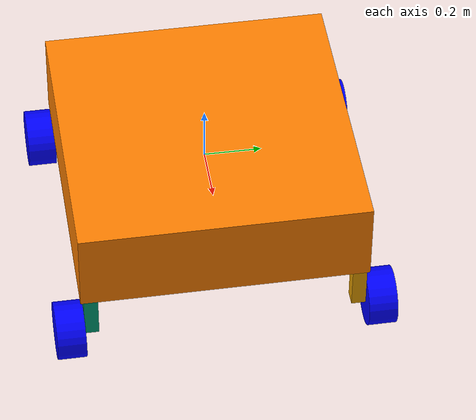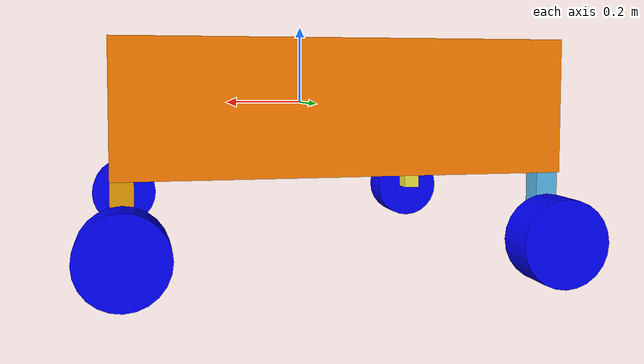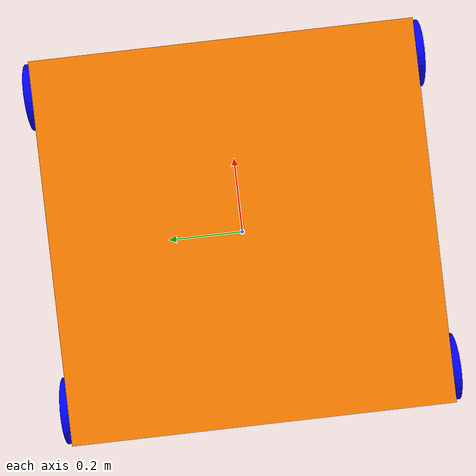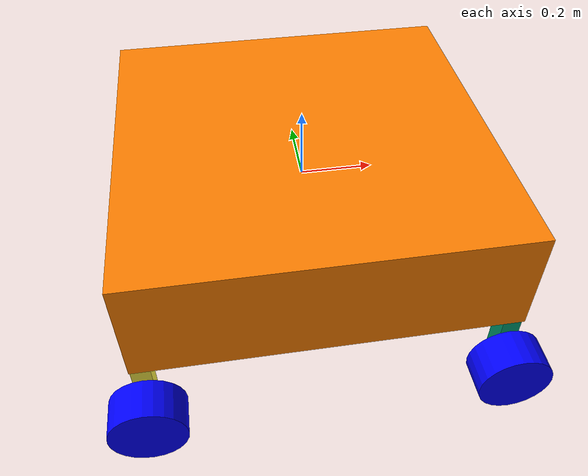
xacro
<?xml version="1.0"?>
<robot xmlns:xacro="http://www.ros.org/wiki/xacro" >
    <!-- Include xacro -->
    <xacro:include filename="$(find robot_description)/urdf/robot_steering.xacro"/>
    <xacro:include filename="$(find robot_description)/urdf/robot_type.xacro"/>

    <!-- Base structure -->
    <link name="base_link">
      <visual>
        <origin xyz="0 0 0" rpy="0 0 0"/>
        <geometry>
          <box size="1 1 0.3"/>
        </geometry>
        <material name="Orange">
          <color rgba="1.0 0.5 0 1.0"/>
        </material>
      </visual>
      <collision>
        <origin xyz="0 0 0" rpy="0 0 0"/>
        <geometry>
          <box size="1 1 0.3"/>
        </geometry>
      </collision>
      <inertial>
        <mass value="5.0"/>
        <origin xyz="0 0 0" rpy="0 0 0"/>
        <inertia ixx="0.1" ixy="0.0" ixz="0.0"
                 iyy="0.1" iyz="0.0"
                 izz="0.1"/>
      </inertial>
    </link>

    <!-- Wheel -->
    <xacro:wheel prefix="steering_1_link" number="1" pos_x="0" pos_y="0.075" pos_z="-0.075"/>
    <xacro:wheel prefix="steering_2_link" number="2" pos_x="0" pos_y="0.075" pos_z="-0.075"/>
    <xacro:wheel prefix="steering_3_link" number="3" pos_x="0" pos_y="-0.075" pos_z="-0.075"/>
    <xacro:wheel prefix="steering_4_link" number="4" pos_x="0" pos_y="-0.075" pos_z="-0.075"/>

</robot>

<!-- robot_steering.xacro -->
<robot name="durian_robot" xmlns:xacro="http://www.ros.org/wiki/xacro">

    <!-- Joint -->
    <joint name="steering_1_joint" type="revolute">
      <parent link="base_link"/>
      <child link="steering_1_link"/>
      <axis xyz="0 0 1"/>
      <origin xyz="0.475 0.465 -0.225" rpy="0 0 0"/>
      <limit effort="100.0" velocity="2.0" lower="-0.7854" upper="0"/>
    </joint>
    <joint name="steering_2_joint" type="revolute">
      <parent link="base_link"/>
      <child link="steering_2_link"/>
      <axis xyz="0 0 1"/>
      <origin xyz="-0.475 0.465 -0.225" rpy="0 0 0"/>
      <limit effort="100.0" velocity="2.0" lower="0" upper="0.7854"/>
    </joint>
    <joint name="steering_3_joint" type="revolute">
      <parent link="base_link"/>
      <child link="steering_3_link"/>
      <axis xyz="0 0 1"/>
      <origin xyz="0.475 -0.465 -0.225" rpy="0 0 0"/>
      <limit effort="100.0" velocity="2.0" lower="0" upper="0.7854"/>
    </joint>
    <joint name="steering_4_joint" type="revolute">
      <parent link="base_link"/>
      <child link="steering_4_link"/>
      <axis xyz="0 0 1"/>
      <origin xyz="-0.475 -0.465 -0.225" rpy="0 0 0"/>
      <limit effort="100.0" velocity="2.0" lower="-0.7854" upper="0"/>
    </joint>

    <!-- Link -->
    <link name="steering_1_link">
      <visual>
        <origin xyz="0 0 0" rpy="0 0 0"/>
        <geometry>
          <box size="0.05 0.05 0.15"/>
        </geometry>
      </visual>
      <collision>
        <origin xyz="0 0 0" rpy="0 0 0"/>
        <geometry>
          <box size="0.05 0.05 0.15"/>
        </geometry>
      </collision>
      <inertial>
        <origin xyz="0 0 0" rpy="0 0 0"/>
        <mass value="1.0"/>
        <inertia ixx="0.01" ixy="0.0" ixz="0.0" iyy="0.01" iyz="0.0" izz="0.01"/>
      </inertial>
    </link>
    <link name="steering_2_link">
      <visual>
        <origin xyz="0 0 0" rpy="0 0 0"/>
        <geometry>
          <box size="0.05 0.05 0.15"/>
        </geometry>
      </visual>
      <collision>
        <origin xyz="0 0 0" rpy="0 0 0"/>
        <geometry>
          <box size="0.05 0.05 0.15"/>
        </geometry>
      </collision>
      <inertial>
        <origin xyz="0 0 0" rpy="0 0 0"/>
        <mass value="1.0"/>
        <inertia ixx="0.01" ixy="0.0" ixz="0.0" iyy="0.01" iyz="0.0" izz="0.01"/>
      </inertial>
    </link>
    <link name="steering_3_link">
      <visual>
        <origin xyz="0 0 0" rpy="0 0 0"/>
        <geometry>
          <box size="0.05 0.05 0.15"/>
        </geometry>
      </visual>
      <collision>
        <origin xyz="0 0 0" rpy="0 0 0"/>
        <geometry>
          <box size="0.05 0.05 0.15"/>
        </geometry>
      </collision>
      <inertial>
        <origin xyz="0 0 0" rpy="0 0 0"/>
        <mass value="1.0"/>
        <inertia ixx="0.01" ixy="0.0" ixz="0.0" iyy="0.01" iyz="0.0" izz="0.01"/>
      </inertial>
    </link>
    <link name="steering_4_link">
      <visual>
        <origin xyz="0 0 0" rpy="0 0 0"/>
        <geometry>
          <box size="0.05 0.05 0.15"/>
        </geometry>
      </visual>
      <collision>
        <origin xyz="0 0 0" rpy="0 0 0"/>
        <geometry>
          <box size="0.05 0.05 0.15"/>
        </geometry>
      </collision>
      <inertial>
        <origin xyz="0 0 0" rpy="0 0 0"/>
        <mass value="1.0"/>
        <inertia ixx="0.01" ixy="0.0" ixz="0.0" iyy="0.01" iyz="0.0" izz="0.01"/>
      </inertial>
    </link>

</robot>

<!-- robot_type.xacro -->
<robot xmlns:xacro="http://www.ros.org/wiki/xacro">
  <xacro:macro name="wheel" params="prefix number pos_x pos_y pos_z">

    <!-- Joint -->
    <joint name="wheel_${number}_joint" type="continuous">
      <parent link="${prefix}"/>
      <child link="wheel_${number}_link"/>
      <axis xyz="0 0 1"/>
      <origin xyz="${pos_x} ${pos_y} ${pos_z}" rpy="-1.57 0 0"/>
      <limit effort="100.0" velocity="20.0" lower="-3.14" upper="3.14"/>
    </joint>

    <!-- Link -->
    <link name="wheel_${number}_link">
      <visual>
        <origin xyz="0 0 0" rpy="0 0 0"/>
        <geometry>
          <cylinder radius="0.1" length="0.1"/>
        </geometry>
        <material name="Blue">
          <color rgba="0.0 0.0 1.0 1.0"/>
        </material>
      </visual>
      <collision>
        <origin xyz="0 0 0" rpy="0 0 0"/>
        <geometry>
          <cylinder radius="0.1" length="0.1"/>
        </geometry>
      </collision>
      <inertial>
        <origin xyz="0 0 0" rpy="0 0 0"/>
        <mass value="1.0"/>
        <inertia ixx="0.01" ixy="0.0" ixz="0.0" iyy="0.01" iyz="0.0" izz="0.01"/>
      </inertial>
    </link>
  </xacro:macro>
</robot>
